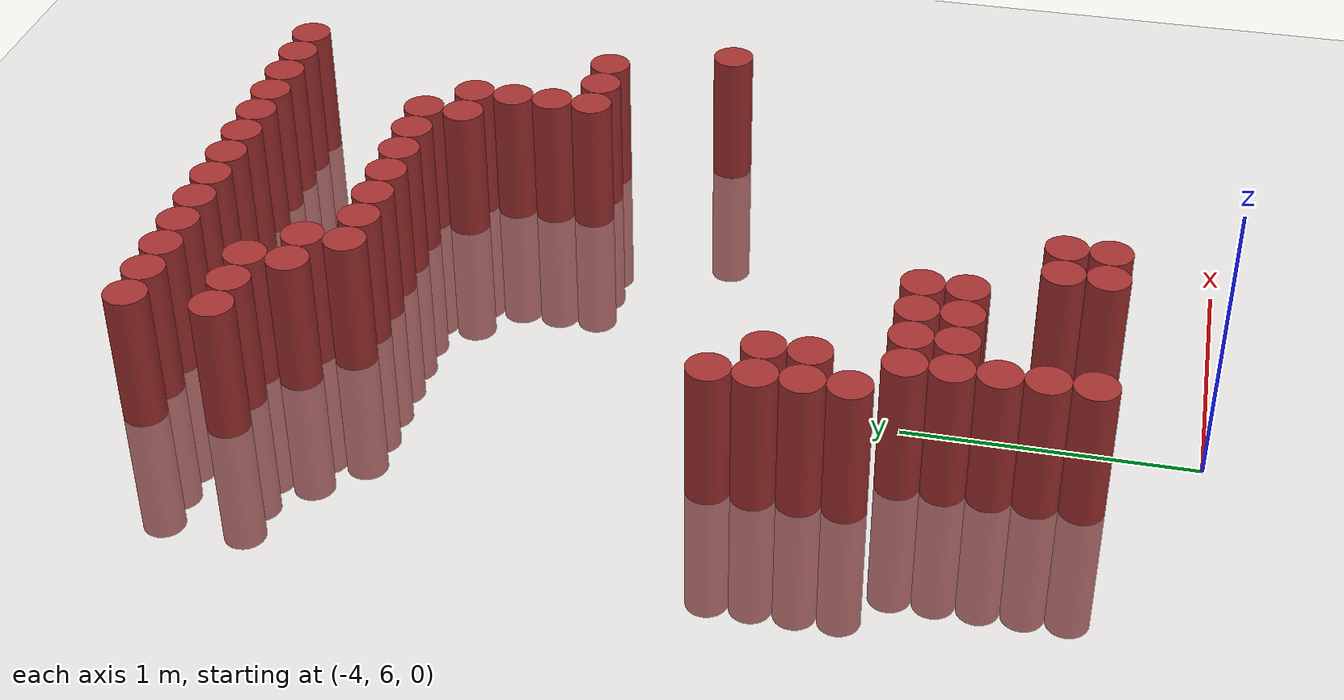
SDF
<sdf version="1.6">
 <world name="default">
  <model name="ground_plane">
   <static>1</static>
   <link name="link">
    <collision name="collision">
     <geometry><plane><normal>0 0 1</normal><size>100 100</size></plane></geometry>
     <surface><friction><ode><mu>100</mu><mu2>50</mu2></ode></friction></surface>
    </collision>
    <visual name="visual">
     <cast_shadows>0</cast_shadows>
     <geometry><plane><normal>0 0 1</normal><size>100 100</size></plane></geometry>
     <material>
      <script><uri>file://media/materials/scripts/gazebo.material</uri><name>Gazebo/Grey</name></script>
     </material>
    </visual>
   </link>
  </model>
  <model name="unit_cylinder_284">
   <static>1</static>
   <pose>-4.425000 7.125000 0.000000 0.000000 0.000000 0.000000</pose>
   <link name="link">
    <inertial>
     <mass>1</mass>
     <inertia><ixx>0.145833</ixx><ixy>0</ixy><ixz>0</ixz><iyy>0.145833</iyy><iyz>0</iyz><izz>0.125</izz></inertia>
    </inertial>
    <collision name="collision">
     <geometry><cylinder><radius>0.075000</radius><length>1</length></cylinder></geometry>
    </collision>
    <visual name="visual">
     <geometry><cylinder><radius>0.075000</radius><length>1</length></cylinder></geometry>
     <material>
      <ambient>0.648000 0.192000 0.192000 1</ambient>
      <diffuse>0.648000 0.192000 0.192000 1</diffuse>
     </material>
     <material>
      <script><name>Gazebo/Grey</name><uri>file://media/materials/scripts/gazebo.material</uri></script>
     </material>
    </visual>
   </link>
  </model>
  <model name="unit_cylinder_285">
   <static>1</static>
   <pose>-4.425000 7.275000 0.000000 0.000000 0.000000 0.000000</pose>
   <link name="link">
    <inertial>
     <mass>1</mass>
     <inertia><ixx>0.145833</ixx><ixy>0</ixy><ixz>0</ixz><iyy>0.145833</iyy><iyz>0</iyz><izz>0.125</izz></inertia>
    </inertial>
    <collision name="collision">
     <geometry><cylinder><radius>0.075000</radius><length>1</length></cylinder></geometry>
    </collision>
    <visual name="visual">
     <geometry><cylinder><radius>0.075000</radius><length>1</length></cylinder></geometry>
     <material>
      <ambient>0.648000 0.192000 0.192000 1</ambient>
      <diffuse>0.648000 0.192000 0.192000 1</diffuse>
     </material>
     <material>
      <script><name>Gazebo/Grey</name><uri>file://media/materials/scripts/gazebo.material</uri></script>
     </material>
    </visual>
   </link>
  </model>
  <model name="unit_cylinder_286">
   <static>1</static>
   <pose>-4.425000 7.425000 0.000000 0.000000 0.000000 0.000000</pose>
   <link name="link">
    <inertial>
     <mass>1</mass>
     <inertia><ixx>0.145833</ixx><ixy>0</ixy><ixz>0</ixz><iyy>0.145833</iyy><iyz>0</iyz><izz>0.125</izz></inertia>
    </inertial>
    <collision name="collision">
     <geometry><cylinder><radius>0.075000</radius><length>1</length></cylinder></geometry>
    </collision>
    <visual name="visual">
     <geometry><cylinder><radius>0.075000</radius><length>1</length></cylinder></geometry>
     <material>
      <ambient>0.648000 0.192000 0.192000 1</ambient>
      <diffuse>0.648000 0.192000 0.192000 1</diffuse>
     </material>
     <material>
      <script><name>Gazebo/Grey</name><uri>file://media/materials/scripts/gazebo.material</uri></script>
     </material>
    </visual>
   </link>
  </model>
  <model name="unit_cylinder_287">
   <static>1</static>
   <pose>-4.425000 7.575000 0.000000 0.000000 0.000000 0.000000</pose>
   <link name="link">
    <inertial>
     <mass>1</mass>
     <inertia><ixx>0.145833</ixx><ixy>0</ixy><ixz>0</ixz><iyy>0.145833</iyy><iyz>0</iyz><izz>0.125</izz></inertia>
    </inertial>
    <collision name="collision">
     <geometry><cylinder><radius>0.075000</radius><length>1</length></cylinder></geometry>
    </collision>
    <visual name="visual">
     <geometry><cylinder><radius>0.075000</radius><length>1</length></cylinder></geometry>
     <material>
      <ambient>0.648000 0.192000 0.192000 1</ambient>
      <diffuse>0.648000 0.192000 0.192000 1</diffuse>
     </material>
     <material>
      <script><name>Gazebo/Grey</name><uri>file://media/materials/scripts/gazebo.material</uri></script>
     </material>
    </visual>
   </link>
  </model>
  <model name="unit_cylinder_288">
   <static>1</static>
   <pose>-4.425000 9.225000 0.000000 0.000000 0.000000 0.000000</pose>
   <link name="link">
    <inertial>
     <mass>1</mass>
     <inertia><ixx>0.145833</ixx><ixy>0</ixy><ixz>0</ixz><iyy>0.145833</iyy><iyz>0</iyz><izz>0.125</izz></inertia>
    </inertial>
    <collision name="collision">
     <geometry><cylinder><radius>0.075000</radius><length>1</length></cylinder></geometry>
    </collision>
    <visual name="visual">
     <geometry><cylinder><radius>0.075000</radius><length>1</length></cylinder></geometry>
     <material>
      <ambient>0.648000 0.192000 0.192000 1</ambient>
      <diffuse>0.648000 0.192000 0.192000 1</diffuse>
     </material>
     <material>
      <script><name>Gazebo/Grey</name><uri>file://media/materials/scripts/gazebo.material</uri></script>
     </material>
    </visual>
   </link>
  </model>
  <model name="unit_cylinder_289">
   <static>1</static>
   <pose>-4.425000 9.525000 0.000000 0.000000 0.000000 0.000000</pose>
   <link name="link">
    <inertial>
     <mass>1</mass>
     <inertia><ixx>0.145833</ixx><ixy>0</ixy><ixz>0</ixz><iyy>0.145833</iyy><iyz>0</iyz><izz>0.125</izz></inertia>
    </inertial>
    <collision name="collision">
     <geometry><cylinder><radius>0.075000</radius><length>1</length></cylinder></geometry>
    </collision>
    <visual name="visual">
     <geometry><cylinder><radius>0.075000</radius><length>1</length></cylinder></geometry>
     <material>
      <ambient>0.648000 0.192000 0.192000 1</ambient>
      <diffuse>0.648000 0.192000 0.192000 1</diffuse>
     </material>
     <material>
      <script><name>Gazebo/Grey</name><uri>file://media/materials/scripts/gazebo.material</uri></script>
     </material>
    </visual>
   </link>
  </model>
  <model name="unit_cylinder_293">
   <static>1</static>
   <pose>-4.275000 6.375000 0.000000 0.000000 0.000000 0.000000</pose>
   <link name="link">
    <inertial>
     <mass>1</mass>
     <inertia><ixx>0.145833</ixx><ixy>0</ixy><ixz>0</ixz><iyy>0.145833</iyy><iyz>0</iyz><izz>0.125</izz></inertia>
    </inertial>
    <collision name="collision">
     <geometry><cylinder><radius>0.075000</radius><length>1</length></cylinder></geometry>
    </collision>
    <visual name="visual">
     <geometry><cylinder><radius>0.075000</radius><length>1</length></cylinder></geometry>
     <material>
      <ambient>0.648000 0.192000 0.192000 1</ambient>
      <diffuse>0.648000 0.192000 0.192000 1</diffuse>
     </material>
     <material>
      <script><name>Gazebo/Grey</name><uri>file://media/materials/scripts/gazebo.material</uri></script>
     </material>
    </visual>
   </link>
  </model>
  <model name="unit_cylinder_294">
   <static>1</static>
   <pose>-4.275000 6.525000 0.000000 0.000000 0.000000 0.000000</pose>
   <link name="link">
    <inertial>
     <mass>1</mass>
     <inertia><ixx>0.145833</ixx><ixy>0</ixy><ixz>0</ixz><iyy>0.145833</iyy><iyz>0</iyz><izz>0.125</izz></inertia>
    </inertial>
    <collision name="collision">
     <geometry><cylinder><radius>0.075000</radius><length>1</length></cylinder></geometry>
    </collision>
    <visual name="visual">
     <geometry><cylinder><radius>0.075000</radius><length>1</length></cylinder></geometry>
     <material>
      <ambient>0.648000 0.192000 0.192000 1</ambient>
      <diffuse>0.648000 0.192000 0.192000 1</diffuse>
     </material>
     <material>
      <script><name>Gazebo/Grey</name><uri>file://media/materials/scripts/gazebo.material</uri></script>
     </material>
    </visual>
   </link>
  </model>
  <model name="unit_cylinder_295">
   <static>1</static>
   <pose>-4.275000 6.675000 0.000000 0.000000 0.000000 0.000000</pose>
   <link name="link">
    <inertial>
     <mass>1</mass>
     <inertia><ixx>0.145833</ixx><ixy>0</ixy><ixz>0</ixz><iyy>0.145833</iyy><iyz>0</iyz><izz>0.125</izz></inertia>
    </inertial>
    <collision name="collision">
     <geometry><cylinder><radius>0.075000</radius><length>1</length></cylinder></geometry>
    </collision>
    <visual name="visual">
     <geometry><cylinder><radius>0.075000</radius><length>1</length></cylinder></geometry>
     <material>
      <ambient>0.648000 0.192000 0.192000 1</ambient>
      <diffuse>0.648000 0.192000 0.192000 1</diffuse>
     </material>
     <material>
      <script><name>Gazebo/Grey</name><uri>file://media/materials/scripts/gazebo.material</uri></script>
     </material>
    </visual>
   </link>
  </model>
  <model name="unit_cylinder_296">
   <static>1</static>
   <pose>-4.275000 6.825000 0.000000 0.000000 0.000000 0.000000</pose>
   <link name="link">
    <inertial>
     <mass>1</mass>
     <inertia><ixx>0.145833</ixx><ixy>0</ixy><ixz>0</ixz><iyy>0.145833</iyy><iyz>0</iyz><izz>0.125</izz></inertia>
    </inertial>
    <collision name="collision">
     <geometry><cylinder><radius>0.075000</radius><length>1</length></cylinder></geometry>
    </collision>
    <visual name="visual">
     <geometry><cylinder><radius>0.075000</radius><length>1</length></cylinder></geometry>
     <material>
      <ambient>0.648000 0.192000 0.192000 1</ambient>
      <diffuse>0.648000 0.192000 0.192000 1</diffuse>
     </material>
     <material>
      <script><name>Gazebo/Grey</name><uri>file://media/materials/scripts/gazebo.material</uri></script>
     </material>
    </visual>
   </link>
  </model>
  <model name="unit_cylinder_297">
   <static>1</static>
   <pose>-4.275000 6.975000 0.000000 0.000000 0.000000 0.000000</pose>
   <link name="link">
    <inertial>
     <mass>1</mass>
     <inertia><ixx>0.145833</ixx><ixy>0</ixy><ixz>0</ixz><iyy>0.145833</iyy><iyz>0</iyz><izz>0.125</izz></inertia>
    </inertial>
    <collision name="collision">
     <geometry><cylinder><radius>0.075000</radius><length>1</length></cylinder></geometry>
    </collision>
    <visual name="visual">
     <geometry><cylinder><radius>0.075000</radius><length>1</length></cylinder></geometry>
     <material>
      <ambient>0.648000 0.192000 0.192000 1</ambient>
      <diffuse>0.648000 0.192000 0.192000 1</diffuse>
     </material>
     <material>
      <script><name>Gazebo/Grey</name><uri>file://media/materials/scripts/gazebo.material</uri></script>
     </material>
    </visual>
   </link>
  </model>
  <model name="unit_cylinder_298">
   <static>1</static>
   <pose>-4.275000 7.275000 0.000000 0.000000 0.000000 0.000000</pose>
   <link name="link">
    <inertial>
     <mass>1</mass>
     <inertia><ixx>0.145833</ixx><ixy>0</ixy><ixz>0</ixz><iyy>0.145833</iyy><iyz>0</iyz><izz>0.125</izz></inertia>
    </inertial>
    <collision name="collision">
     <geometry><cylinder><radius>0.075000</radius><length>1</length></cylinder></geometry>
    </collision>
    <visual name="visual">
     <geometry><cylinder><radius>0.075000</radius><length>1</length></cylinder></geometry>
     <material>
      <ambient>0.648000 0.192000 0.192000 1</ambient>
      <diffuse>0.648000 0.192000 0.192000 1</diffuse>
     </material>
     <material>
      <script><name>Gazebo/Grey</name><uri>file://media/materials/scripts/gazebo.material</uri></script>
     </material>
    </visual>
   </link>
  </model>
  <model name="unit_cylinder_299">
   <static>1</static>
   <pose>-4.275000 7.425000 0.000000 0.000000 0.000000 0.000000</pose>
   <link name="link">
    <inertial>
     <mass>1</mass>
     <inertia><ixx>0.145833</ixx><ixy>0</ixy><ixz>0</ixz><iyy>0.145833</iyy><iyz>0</iyz><izz>0.125</izz></inertia>
    </inertial>
    <collision name="collision">
     <geometry><cylinder><radius>0.075000</radius><length>1</length></cylinder></geometry>
    </collision>
    <visual name="visual">
     <geometry><cylinder><radius>0.075000</radius><length>1</length></cylinder></geometry>
     <material>
      <ambient>0.648000 0.192000 0.192000 1</ambient>
      <diffuse>0.648000 0.192000 0.192000 1</diffuse>
     </material>
     <material>
      <script><name>Gazebo/Grey</name><uri>file://media/materials/scripts/gazebo.material</uri></script>
     </material>
    </visual>
   </link>
  </model>
  <model name="unit_cylinder_300">
   <static>1</static>
   <pose>-4.275000 9.225000 0.000000 0.000000 0.000000 0.000000</pose>
   <link name="link">
    <inertial>
     <mass>1</mass>
     <inertia><ixx>0.145833</ixx><ixy>0</ixy><ixz>0</ixz><iyy>0.145833</iyy><iyz>0</iyz><izz>0.125</izz></inertia>
    </inertial>
    <collision name="collision">
     <geometry><cylinder><radius>0.075000</radius><length>1</length></cylinder></geometry>
    </collision>
    <visual name="visual">
     <geometry><cylinder><radius>0.075000</radius><length>1</length></cylinder></geometry>
     <material>
      <ambient>0.648000 0.192000 0.192000 1</ambient>
      <diffuse>0.648000 0.192000 0.192000 1</diffuse>
     </material>
     <material>
      <script><name>Gazebo/Grey</name><uri>file://media/materials/scripts/gazebo.material</uri></script>
     </material>
    </visual>
   </link>
  </model>
  <model name="unit_cylinder_301">
   <static>1</static>
   <pose>-4.275000 9.525000 0.000000 0.000000 0.000000 0.000000</pose>
   <link name="link">
    <inertial>
     <mass>1</mass>
     <inertia><ixx>0.145833</ixx><ixy>0</ixy><ixz>0</ixz><iyy>0.145833</iyy><iyz>0</iyz><izz>0.125</izz></inertia>
    </inertial>
    <collision name="collision">
     <geometry><cylinder><radius>0.075000</radius><length>1</length></cylinder></geometry>
    </collision>
    <visual name="visual">
     <geometry><cylinder><radius>0.075000</radius><length>1</length></cylinder></geometry>
     <material>
      <ambient>0.648000 0.192000 0.192000 1</ambient>
      <diffuse>0.648000 0.192000 0.192000 1</diffuse>
     </material>
     <material>
      <script><name>Gazebo/Grey</name><uri>file://media/materials/scripts/gazebo.material</uri></script>
     </material>
    </visual>
   </link>
  </model>
  <model name="unit_cylinder_306">
   <static>1</static>
   <pose>-4.125000 6.825000 0.000000 0.000000 0.000000 0.000000</pose>
   <link name="link">
    <inertial>
     <mass>1</mass>
     <inertia><ixx>0.145833</ixx><ixy>0</ixy><ixz>0</ixz><iyy>0.145833</iyy><iyz>0</iyz><izz>0.125</izz></inertia>
    </inertial>
    <collision name="collision">
     <geometry><cylinder><radius>0.075000</radius><length>1</length></cylinder></geometry>
    </collision>
    <visual name="visual">
     <geometry><cylinder><radius>0.075000</radius><length>1</length></cylinder></geometry>
     <material>
      <ambient>0.648000 0.192000 0.192000 1</ambient>
      <diffuse>0.648000 0.192000 0.192000 1</diffuse>
     </material>
     <material>
      <script><name>Gazebo/Grey</name><uri>file://media/materials/scripts/gazebo.material</uri></script>
     </material>
    </visual>
   </link>
  </model>
  <model name="unit_cylinder_307">
   <static>1</static>
   <pose>-4.125000 6.975000 0.000000 0.000000 0.000000 0.000000</pose>
   <link name="link">
    <inertial>
     <mass>1</mass>
     <inertia><ixx>0.145833</ixx><ixy>0</ixy><ixz>0</ixz><iyy>0.145833</iyy><iyz>0</iyz><izz>0.125</izz></inertia>
    </inertial>
    <collision name="collision">
     <geometry><cylinder><radius>0.075000</radius><length>1</length></cylinder></geometry>
    </collision>
    <visual name="visual">
     <geometry><cylinder><radius>0.075000</radius><length>1</length></cylinder></geometry>
     <material>
      <ambient>0.648000 0.192000 0.192000 1</ambient>
      <diffuse>0.648000 0.192000 0.192000 1</diffuse>
     </material>
     <material>
      <script><name>Gazebo/Grey</name><uri>file://media/materials/scripts/gazebo.material</uri></script>
     </material>
    </visual>
   </link>
  </model>
  <model name="unit_cylinder_308">
   <static>1</static>
   <pose>-4.125000 9.075000 0.000000 0.000000 0.000000 0.000000</pose>
   <link name="link">
    <inertial>
     <mass>1</mass>
     <inertia><ixx>0.145833</ixx><ixy>0</ixy><ixz>0</ixz><iyy>0.145833</iyy><iyz>0</iyz><izz>0.125</izz></inertia>
    </inertial>
    <collision name="collision">
     <geometry><cylinder><radius>0.075000</radius><length>1</length></cylinder></geometry>
    </collision>
    <visual name="visual">
     <geometry><cylinder><radius>0.075000</radius><length>1</length></cylinder></geometry>
     <material>
      <ambient>0.648000 0.192000 0.192000 1</ambient>
      <diffuse>0.648000 0.192000 0.192000 1</diffuse>
     </material>
     <material>
      <script><name>Gazebo/Grey</name><uri>file://media/materials/scripts/gazebo.material</uri></script>
     </material>
    </visual>
   </link>
  </model>
  <model name="unit_cylinder_309">
   <static>1</static>
   <pose>-4.125000 9.225000 0.000000 0.000000 0.000000 0.000000</pose>
   <link name="link">
    <inertial>
     <mass>1</mass>
     <inertia><ixx>0.145833</ixx><ixy>0</ixy><ixz>0</ixz><iyy>0.145833</iyy><iyz>0</iyz><izz>0.125</izz></inertia>
    </inertial>
    <collision name="collision">
     <geometry><cylinder><radius>0.075000</radius><length>1</length></cylinder></geometry>
    </collision>
    <visual name="visual">
     <geometry><cylinder><radius>0.075000</radius><length>1</length></cylinder></geometry>
     <material>
      <ambient>0.648000 0.192000 0.192000 1</ambient>
      <diffuse>0.648000 0.192000 0.192000 1</diffuse>
     </material>
     <material>
      <script><name>Gazebo/Grey</name><uri>file://media/materials/scripts/gazebo.material</uri></script>
     </material>
    </visual>
   </link>
  </model>
  <model name="unit_cylinder_310">
   <static>1</static>
   <pose>-4.125000 9.525000 0.000000 0.000000 0.000000 0.000000</pose>
   <link name="link">
    <inertial>
     <mass>1</mass>
     <inertia><ixx>0.145833</ixx><ixy>0</ixy><ixz>0</ixz><iyy>0.145833</iyy><iyz>0</iyz><izz>0.125</izz></inertia>
    </inertial>
    <collision name="collision">
     <geometry><cylinder><radius>0.075000</radius><length>1</length></cylinder></geometry>
    </collision>
    <visual name="visual">
     <geometry><cylinder><radius>0.075000</radius><length>1</length></cylinder></geometry>
     <material>
      <ambient>0.648000 0.192000 0.192000 1</ambient>
      <diffuse>0.648000 0.192000 0.192000 1</diffuse>
     </material>
     <material>
      <script><name>Gazebo/Grey</name><uri>file://media/materials/scripts/gazebo.material</uri></script>
     </material>
    </visual>
   </link>
  </model>
  <model name="unit_cylinder_312">
   <static>1</static>
   <pose>-3.975000 6.825000 0.000000 0.000000 0.000000 0.000000</pose>
   <link name="link">
    <inertial>
     <mass>1</mass>
     <inertia><ixx>0.145833</ixx><ixy>0</ixy><ixz>0</ixz><iyy>0.145833</iyy><iyz>0</iyz><izz>0.125</izz></inertia>
    </inertial>
    <collision name="collision">
     <geometry><cylinder><radius>0.075000</radius><length>1</length></cylinder></geometry>
    </collision>
    <visual name="visual">
     <geometry><cylinder><radius>0.075000</radius><length>1</length></cylinder></geometry>
     <material>
      <ambient>0.648000 0.192000 0.192000 1</ambient>
      <diffuse>0.648000 0.192000 0.192000 1</diffuse>
     </material>
     <material>
      <script><name>Gazebo/Grey</name><uri>file://media/materials/scripts/gazebo.material</uri></script>
     </material>
    </visual>
   </link>
  </model>
  <model name="unit_cylinder_313">
   <static>1</static>
   <pose>-3.975000 6.975000 0.000000 0.000000 0.000000 0.000000</pose>
   <link name="link">
    <inertial>
     <mass>1</mass>
     <inertia><ixx>0.145833</ixx><ixy>0</ixy><ixz>0</ixz><iyy>0.145833</iyy><iyz>0</iyz><izz>0.125</izz></inertia>
    </inertial>
    <collision name="collision">
     <geometry><cylinder><radius>0.075000</radius><length>1</length></cylinder></geometry>
    </collision>
    <visual name="visual">
     <geometry><cylinder><radius>0.075000</radius><length>1</length></cylinder></geometry>
     <material>
      <ambient>0.648000 0.192000 0.192000 1</ambient>
      <diffuse>0.648000 0.192000 0.192000 1</diffuse>
     </material>
     <material>
      <script><name>Gazebo/Grey</name><uri>file://media/materials/scripts/gazebo.material</uri></script>
     </material>
    </visual>
   </link>
  </model>
  <model name="unit_cylinder_314">
   <static>1</static>
   <pose>-3.975000 8.925000 0.000000 0.000000 0.000000 0.000000</pose>
   <link name="link">
    <inertial>
     <mass>1</mass>
     <inertia><ixx>0.145833</ixx><ixy>0</ixy><ixz>0</ixz><iyy>0.145833</iyy><iyz>0</iyz><izz>0.125</izz></inertia>
    </inertial>
    <collision name="collision">
     <geometry><cylinder><radius>0.075000</radius><length>1</length></cylinder></geometry>
    </collision>
    <visual name="visual">
     <geometry><cylinder><radius>0.075000</radius><length>1</length></cylinder></geometry>
     <material>
      <ambient>0.648000 0.192000 0.192000 1</ambient>
      <diffuse>0.648000 0.192000 0.192000 1</diffuse>
     </material>
     <material>
      <script><name>Gazebo/Grey</name><uri>file://media/materials/scripts/gazebo.material</uri></script>
     </material>
    </visual>
   </link>
  </model>
  <model name="unit_cylinder_315">
   <static>1</static>
   <pose>-3.975000 9.075000 0.000000 0.000000 0.000000 0.000000</pose>
   <link name="link">
    <inertial>
     <mass>1</mass>
     <inertia><ixx>0.145833</ixx><ixy>0</ixy><ixz>0</ixz><iyy>0.145833</iyy><iyz>0</iyz><izz>0.125</izz></inertia>
    </inertial>
    <collision name="collision">
     <geometry><cylinder><radius>0.075000</radius><length>1</length></cylinder></geometry>
    </collision>
    <visual name="visual">
     <geometry><cylinder><radius>0.075000</radius><length>1</length></cylinder></geometry>
     <material>
      <ambient>0.648000 0.192000 0.192000 1</ambient>
      <diffuse>0.648000 0.192000 0.192000 1</diffuse>
     </material>
     <material>
      <script><name>Gazebo/Grey</name><uri>file://media/materials/scripts/gazebo.material</uri></script>
     </material>
    </visual>
   </link>
  </model>
  <model name="unit_cylinder_316">
   <static>1</static>
   <pose>-3.975000 9.525000 0.000000 0.000000 0.000000 0.000000</pose>
   <link name="link">
    <inertial>
     <mass>1</mass>
     <inertia><ixx>0.145833</ixx><ixy>0</ixy><ixz>0</ixz><iyy>0.145833</iyy><iyz>0</iyz><izz>0.125</izz></inertia>
    </inertial>
    <collision name="collision">
     <geometry><cylinder><radius>0.075000</radius><length>1</length></cylinder></geometry>
    </collision>
    <visual name="visual">
     <geometry><cylinder><radius>0.075000</radius><length>1</length></cylinder></geometry>
     <material>
      <ambient>0.648000 0.192000 0.192000 1</ambient>
      <diffuse>0.648000 0.192000 0.192000 1</diffuse>
     </material>
     <material>
      <script><name>Gazebo/Grey</name><uri>file://media/materials/scripts/gazebo.material</uri></script>
     </material>
    </visual>
   </link>
  </model>
  <model name="unit_cylinder_319">
   <static>1</static>
   <pose>-3.825000 6.825000 0.000000 0.000000 0.000000 0.000000</pose>
   <link name="link">
    <inertial>
     <mass>1</mass>
     <inertia><ixx>0.145833</ixx><ixy>0</ixy><ixz>0</ixz><iyy>0.145833</iyy><iyz>0</iyz><izz>0.125</izz></inertia>
    </inertial>
    <collision name="collision">
     <geometry><cylinder><radius>0.075000</radius><length>1</length></cylinder></geometry>
    </collision>
    <visual name="visual">
     <geometry><cylinder><radius>0.075000</radius><length>1</length></cylinder></geometry>
     <material>
      <ambient>0.648000 0.192000 0.192000 1</ambient>
      <diffuse>0.648000 0.192000 0.192000 1</diffuse>
     </material>
     <material>
      <script><name>Gazebo/Grey</name><uri>file://media/materials/scripts/gazebo.material</uri></script>
     </material>
    </visual>
   </link>
  </model>
  <model name="unit_cylinder_320">
   <static>1</static>
   <pose>-3.825000 6.975000 0.000000 0.000000 0.000000 0.000000</pose>
   <link name="link">
    <inertial>
     <mass>1</mass>
     <inertia><ixx>0.145833</ixx><ixy>0</ixy><ixz>0</ixz><iyy>0.145833</iyy><iyz>0</iyz><izz>0.125</izz></inertia>
    </inertial>
    <collision name="collision">
     <geometry><cylinder><radius>0.075000</radius><length>1</length></cylinder></geometry>
    </collision>
    <visual name="visual">
     <geometry><cylinder><radius>0.075000</radius><length>1</length></cylinder></geometry>
     <material>
      <ambient>0.648000 0.192000 0.192000 1</ambient>
      <diffuse>0.648000 0.192000 0.192000 1</diffuse>
     </material>
     <material>
      <script><name>Gazebo/Grey</name><uri>file://media/materials/scripts/gazebo.material</uri></script>
     </material>
    </visual>
   </link>
  </model>
  <model name="unit_cylinder_321">
   <static>1</static>
   <pose>-3.825000 8.925000 0.000000 0.000000 0.000000 0.000000</pose>
   <link name="link">
    <inertial>
     <mass>1</mass>
     <inertia><ixx>0.145833</ixx><ixy>0</ixy><ixz>0</ixz><iyy>0.145833</iyy><iyz>0</iyz><izz>0.125</izz></inertia>
    </inertial>
    <collision name="collision">
     <geometry><cylinder><radius>0.075000</radius><length>1</length></cylinder></geometry>
    </collision>
    <visual name="visual">
     <geometry><cylinder><radius>0.075000</radius><length>1</length></cylinder></geometry>
     <material>
      <ambient>0.648000 0.192000 0.192000 1</ambient>
      <diffuse>0.648000 0.192000 0.192000 1</diffuse>
     </material>
     <material>
      <script><name>Gazebo/Grey</name><uri>file://media/materials/scripts/gazebo.material</uri></script>
     </material>
    </visual>
   </link>
  </model>
  <model name="unit_cylinder_322">
   <static>1</static>
   <pose>-3.825000 9.525000 0.000000 0.000000 0.000000 0.000000</pose>
   <link name="link">
    <inertial>
     <mass>1</mass>
     <inertia><ixx>0.145833</ixx><ixy>0</ixy><ixz>0</ixz><iyy>0.145833</iyy><iyz>0</iyz><izz>0.125</izz></inertia>
    </inertial>
    <collision name="collision">
     <geometry><cylinder><radius>0.075000</radius><length>1</length></cylinder></geometry>
    </collision>
    <visual name="visual">
     <geometry><cylinder><radius>0.075000</radius><length>1</length></cylinder></geometry>
     <material>
      <ambient>0.648000 0.192000 0.192000 1</ambient>
      <diffuse>0.648000 0.192000 0.192000 1</diffuse>
     </material>
     <material>
      <script><name>Gazebo/Grey</name><uri>file://media/materials/scripts/gazebo.material</uri></script>
     </material>
    </visual>
   </link>
  </model>
  <model name="unit_cylinder_326">
   <static>1</static>
   <pose>-3.675000 6.375000 0.000000 0.000000 0.000000 0.000000</pose>
   <link name="link">
    <inertial>
     <mass>1</mass>
     <inertia><ixx>0.145833</ixx><ixy>0</ixy><ixz>0</ixz><iyy>0.145833</iyy><iyz>0</iyz><izz>0.125</izz></inertia>
    </inertial>
    <collision name="collision">
     <geometry><cylinder><radius>0.075000</radius><length>1</length></cylinder></geometry>
    </collision>
    <visual name="visual">
     <geometry><cylinder><radius>0.075000</radius><length>1</length></cylinder></geometry>
     <material>
      <ambient>0.648000 0.192000 0.192000 1</ambient>
      <diffuse>0.648000 0.192000 0.192000 1</diffuse>
     </material>
     <material>
      <script><name>Gazebo/Grey</name><uri>file://media/materials/scripts/gazebo.material</uri></script>
     </material>
    </visual>
   </link>
  </model>
  <model name="unit_cylinder_327">
   <static>1</static>
   <pose>-3.675000 6.525000 0.000000 0.000000 0.000000 0.000000</pose>
   <link name="link">
    <inertial>
     <mass>1</mass>
     <inertia><ixx>0.145833</ixx><ixy>0</ixy><ixz>0</ixz><iyy>0.145833</iyy><iyz>0</iyz><izz>0.125</izz></inertia>
    </inertial>
    <collision name="collision">
     <geometry><cylinder><radius>0.075000</radius><length>1</length></cylinder></geometry>
    </collision>
    <visual name="visual">
     <geometry><cylinder><radius>0.075000</radius><length>1</length></cylinder></geometry>
     <material>
      <ambient>0.648000 0.192000 0.192000 1</ambient>
      <diffuse>0.648000 0.192000 0.192000 1</diffuse>
     </material>
     <material>
      <script><name>Gazebo/Grey</name><uri>file://media/materials/scripts/gazebo.material</uri></script>
     </material>
    </visual>
   </link>
  </model>
  <model name="unit_cylinder_328">
   <static>1</static>
   <pose>-3.675000 8.925000 0.000000 0.000000 0.000000 0.000000</pose>
   <link name="link">
    <inertial>
     <mass>1</mass>
     <inertia><ixx>0.145833</ixx><ixy>0</ixy><ixz>0</ixz><iyy>0.145833</iyy><iyz>0</iyz><izz>0.125</izz></inertia>
    </inertial>
    <collision name="collision">
     <geometry><cylinder><radius>0.075000</radius><length>1</length></cylinder></geometry>
    </collision>
    <visual name="visual">
     <geometry><cylinder><radius>0.075000</radius><length>1</length></cylinder></geometry>
     <material>
      <ambient>0.648000 0.192000 0.192000 1</ambient>
      <diffuse>0.648000 0.192000 0.192000 1</diffuse>
     </material>
     <material>
      <script><name>Gazebo/Grey</name><uri>file://media/materials/scripts/gazebo.material</uri></script>
     </material>
    </visual>
   </link>
  </model>
  <model name="unit_cylinder_329">
   <static>1</static>
   <pose>-3.675000 9.525000 0.000000 0.000000 0.000000 0.000000</pose>
   <link name="link">
    <inertial>
     <mass>1</mass>
     <inertia><ixx>0.145833</ixx><ixy>0</ixy><ixz>0</ixz><iyy>0.145833</iyy><iyz>0</iyz><izz>0.125</izz></inertia>
    </inertial>
    <collision name="collision">
     <geometry><cylinder><radius>0.075000</radius><length>1</length></cylinder></geometry>
    </collision>
    <visual name="visual">
     <geometry><cylinder><radius>0.075000</radius><length>1</length></cylinder></geometry>
     <material>
      <ambient>0.648000 0.192000 0.192000 1</ambient>
      <diffuse>0.648000 0.192000 0.192000 1</diffuse>
     </material>
     <material>
      <script><name>Gazebo/Grey</name><uri>file://media/materials/scripts/gazebo.material</uri></script>
     </material>
    </visual>
   </link>
  </model>
  <model name="unit_cylinder_333">
   <static>1</static>
   <pose>-3.525000 6.375000 0.000000 0.000000 0.000000 0.000000</pose>
   <link name="link">
    <inertial>
     <mass>1</mass>
     <inertia><ixx>0.145833</ixx><ixy>0</ixy><ixz>0</ixz><iyy>0.145833</iyy><iyz>0</iyz><izz>0.125</izz></inertia>
    </inertial>
    <collision name="collision">
     <geometry><cylinder><radius>0.075000</radius><length>1</length></cylinder></geometry>
    </collision>
    <visual name="visual">
     <geometry><cylinder><radius>0.075000</radius><length>1</length></cylinder></geometry>
     <material>
      <ambient>0.648000 0.192000 0.192000 1</ambient>
      <diffuse>0.648000 0.192000 0.192000 1</diffuse>
     </material>
     <material>
      <script><name>Gazebo/Grey</name><uri>file://media/materials/scripts/gazebo.material</uri></script>
     </material>
    </visual>
   </link>
  </model>
  <model name="unit_cylinder_334">
   <static>1</static>
   <pose>-3.525000 6.525000 0.000000 0.000000 0.000000 0.000000</pose>
   <link name="link">
    <inertial>
     <mass>1</mass>
     <inertia><ixx>0.145833</ixx><ixy>0</ixy><ixz>0</ixz><iyy>0.145833</iyy><iyz>0</iyz><izz>0.125</izz></inertia>
    </inertial>
    <collision name="collision">
     <geometry><cylinder><radius>0.075000</radius><length>1</length></cylinder></geometry>
    </collision>
    <visual name="visual">
     <geometry><cylinder><radius>0.075000</radius><length>1</length></cylinder></geometry>
     <material>
      <ambient>0.648000 0.192000 0.192000 1</ambient>
      <diffuse>0.648000 0.192000 0.192000 1</diffuse>
     </material>
     <material>
      <script><name>Gazebo/Grey</name><uri>file://media/materials/scripts/gazebo.material</uri></script>
     </material>
    </visual>
   </link>
  </model>
  <model name="unit_cylinder_335">
   <static>1</static>
   <pose>-3.525000 8.925000 0.000000 0.000000 0.000000 0.000000</pose>
   <link name="link">
    <inertial>
     <mass>1</mass>
     <inertia><ixx>0.145833</ixx><ixy>0</ixy><ixz>0</ixz><iyy>0.145833</iyy><iyz>0</iyz><izz>0.125</izz></inertia>
    </inertial>
    <collision name="collision">
     <geometry><cylinder><radius>0.075000</radius><length>1</length></cylinder></geometry>
    </collision>
    <visual name="visual">
     <geometry><cylinder><radius>0.075000</radius><length>1</length></cylinder></geometry>
     <material>
      <ambient>0.648000 0.192000 0.192000 1</ambient>
      <diffuse>0.648000 0.192000 0.192000 1</diffuse>
     </material>
     <material>
      <script><name>Gazebo/Grey</name><uri>file://media/materials/scripts/gazebo.material</uri></script>
     </material>
    </visual>
   </link>
  </model>
  <model name="unit_cylinder_336">
   <static>1</static>
   <pose>-3.525000 9.525000 0.000000 0.000000 0.000000 0.000000</pose>
   <link name="link">
    <inertial>
     <mass>1</mass>
     <inertia><ixx>0.145833</ixx><ixy>0</ixy><ixz>0</ixz><iyy>0.145833</iyy><iyz>0</iyz><izz>0.125</izz></inertia>
    </inertial>
    <collision name="collision">
     <geometry><cylinder><radius>0.075000</radius><length>1</length></cylinder></geometry>
    </collision>
    <visual name="visual">
     <geometry><cylinder><radius>0.075000</radius><length>1</length></cylinder></geometry>
     <material>
      <ambient>0.648000 0.192000 0.192000 1</ambient>
      <diffuse>0.648000 0.192000 0.192000 1</diffuse>
     </material>
     <material>
      <script><name>Gazebo/Grey</name><uri>file://media/materials/scripts/gazebo.material</uri></script>
     </material>
    </visual>
   </link>
  </model>
  <model name="unit_cylinder_338">
   <static>1</static>
   <pose>-3.375000 8.925000 0.000000 0.000000 0.000000 0.000000</pose>
   <link name="link">
    <inertial>
     <mass>1</mass>
     <inertia><ixx>0.145833</ixx><ixy>0</ixy><ixz>0</ixz><iyy>0.145833</iyy><iyz>0</iyz><izz>0.125</izz></inertia>
    </inertial>
    <collision name="collision">
     <geometry><cylinder><radius>0.075000</radius><length>1</length></cylinder></geometry>
    </collision>
    <visual name="visual">
     <geometry><cylinder><radius>0.075000</radius><length>1</length></cylinder></geometry>
     <material>
      <ambient>0.648000 0.192000 0.192000 1</ambient>
      <diffuse>0.648000 0.192000 0.192000 1</diffuse>
     </material>
     <material>
      <script><name>Gazebo/Grey</name><uri>file://media/materials/scripts/gazebo.material</uri></script>
     </material>
    </visual>
   </link>
  </model>
  <model name="unit_cylinder_339">
   <static>1</static>
   <pose>-3.375000 9.525000 0.000000 0.000000 0.000000 0.000000</pose>
   <link name="link">
    <inertial>
     <mass>1</mass>
     <inertia><ixx>0.145833</ixx><ixy>0</ixy><ixz>0</ixz><iyy>0.145833</iyy><iyz>0</iyz><izz>0.125</izz></inertia>
    </inertial>
    <collision name="collision">
     <geometry><cylinder><radius>0.075000</radius><length>1</length></cylinder></geometry>
    </collision>
    <visual name="visual">
     <geometry><cylinder><radius>0.075000</radius><length>1</length></cylinder></geometry>
     <material>
      <ambient>0.648000 0.192000 0.192000 1</ambient>
      <diffuse>0.648000 0.192000 0.192000 1</diffuse>
     </material>
     <material>
      <script><name>Gazebo/Grey</name><uri>file://media/materials/scripts/gazebo.material</uri></script>
     </material>
    </visual>
   </link>
  </model>
  <model name="unit_cylinder_340">
   <static>1</static>
   <pose>-3.225000 8.925000 0.000000 0.000000 0.000000 0.000000</pose>
   <link name="link">
    <inertial>
     <mass>1</mass>
     <inertia><ixx>0.145833</ixx><ixy>0</ixy><ixz>0</ixz><iyy>0.145833</iyy><iyz>0</iyz><izz>0.125</izz></inertia>
    </inertial>
    <collision name="collision">
     <geometry><cylinder><radius>0.075000</radius><length>1</length></cylinder></geometry>
    </collision>
    <visual name="visual">
     <geometry><cylinder><radius>0.075000</radius><length>1</length></cylinder></geometry>
     <material>
      <ambient>0.648000 0.192000 0.192000 1</ambient>
      <diffuse>0.648000 0.192000 0.192000 1</diffuse>
     </material>
     <material>
      <script><name>Gazebo/Grey</name><uri>file://media/materials/scripts/gazebo.material</uri></script>
     </material>
    </visual>
   </link>
  </model>
  <model name="unit_cylinder_341">
   <static>1</static>
   <pose>-3.225000 9.525000 0.000000 0.000000 0.000000 0.000000</pose>
   <link name="link">
    <inertial>
     <mass>1</mass>
     <inertia><ixx>0.145833</ixx><ixy>0</ixy><ixz>0</ixz><iyy>0.145833</iyy><iyz>0</iyz><izz>0.125</izz></inertia>
    </inertial>
    <collision name="collision">
     <geometry><cylinder><radius>0.075000</radius><length>1</length></cylinder></geometry>
    </collision>
    <visual name="visual">
     <geometry><cylinder><radius>0.075000</radius><length>1</length></cylinder></geometry>
     <material>
      <ambient>0.648000 0.192000 0.192000 1</ambient>
      <diffuse>0.648000 0.192000 0.192000 1</diffuse>
     </material>
     <material>
      <script><name>Gazebo/Grey</name><uri>file://media/materials/scripts/gazebo.material</uri></script>
     </material>
    </visual>
   </link>
  </model>
  <model name="unit_cylinder_342">
   <static>1</static>
   <pose>-3.075000 8.775000 0.000000 0.000000 0.000000 0.000000</pose>
   <link name="link">
    <inertial>
     <mass>1</mass>
     <inertia><ixx>0.145833</ixx><ixy>0</ixy><ixz>0</ixz><iyy>0.145833</iyy><iyz>0</iyz><izz>0.125</izz></inertia>
    </inertial>
    <collision name="collision">
     <geometry><cylinder><radius>0.075000</radius><length>1</length></cylinder></geometry>
    </collision>
    <visual name="visual">
     <geometry><cylinder><radius>0.075000</radius><length>1</length></cylinder></geometry>
     <material>
      <ambient>0.648000 0.192000 0.192000 1</ambient>
      <diffuse>0.648000 0.192000 0.192000 1</diffuse>
     </material>
     <material>
      <script><name>Gazebo/Grey</name><uri>file://media/materials/scripts/gazebo.material</uri></script>
     </material>
    </visual>
   </link>
  </model>
  <model name="unit_cylinder_343">
   <static>1</static>
   <pose>-3.075000 8.925000 0.000000 0.000000 0.000000 0.000000</pose>
   <link name="link">
    <inertial>
     <mass>1</mass>
     <inertia><ixx>0.145833</ixx><ixy>0</ixy><ixz>0</ixz><iyy>0.145833</iyy><iyz>0</iyz><izz>0.125</izz></inertia>
    </inertial>
    <collision name="collision">
     <geometry><cylinder><radius>0.075000</radius><length>1</length></cylinder></geometry>
    </collision>
    <visual name="visual">
     <geometry><cylinder><radius>0.075000</radius><length>1</length></cylinder></geometry>
     <material>
      <ambient>0.648000 0.192000 0.192000 1</ambient>
      <diffuse>0.648000 0.192000 0.192000 1</diffuse>
     </material>
     <material>
      <script><name>Gazebo/Grey</name><uri>file://media/materials/scripts/gazebo.material</uri></script>
     </material>
    </visual>
   </link>
  </model>
  <model name="unit_cylinder_344">
   <static>1</static>
   <pose>-3.075000 9.525000 0.000000 0.000000 0.000000 0.000000</pose>
   <link name="link">
    <inertial>
     <mass>1</mass>
     <inertia><ixx>0.145833</ixx><ixy>0</ixy><ixz>0</ixz><iyy>0.145833</iyy><iyz>0</iyz><izz>0.125</izz></inertia>
    </inertial>
    <collision name="collision">
     <geometry><cylinder><radius>0.075000</radius><length>1</length></cylinder></geometry>
    </collision>
    <visual name="visual">
     <geometry><cylinder><radius>0.075000</radius><length>1</length></cylinder></geometry>
     <material>
      <ambient>0.648000 0.192000 0.192000 1</ambient>
      <diffuse>0.648000 0.192000 0.192000 1</diffuse>
     </material>
     <material>
      <script><name>Gazebo/Grey</name><uri>file://media/materials/scripts/gazebo.material</uri></script>
     </material>
    </visual>
   </link>
  </model>
  <model name="unit_cylinder_345">
   <static>1</static>
   <pose>-2.925000 8.325000 0.000000 0.000000 0.000000 0.000000</pose>
   <link name="link">
    <inertial>
     <mass>1</mass>
     <inertia><ixx>0.145833</ixx><ixy>0</ixy><ixz>0</ixz><iyy>0.145833</iyy><iyz>0</iyz><izz>0.125</izz></inertia>
    </inertial>
    <collision name="collision">
     <geometry><cylinder><radius>0.075000</radius><length>1</length></cylinder></geometry>
    </collision>
    <visual name="visual">
     <geometry><cylinder><radius>0.075000</radius><length>1</length></cylinder></geometry>
     <material>
      <ambient>0.648000 0.192000 0.192000 1</ambient>
      <diffuse>0.648000 0.192000 0.192000 1</diffuse>
     </material>
     <material>
      <script><name>Gazebo/Grey</name><uri>file://media/materials/scripts/gazebo.material</uri></script>
     </material>
    </visual>
   </link>
  </model>
  <model name="unit_cylinder_346">
   <static>1</static>
   <pose>-2.925000 8.475000 0.000000 0.000000 0.000000 0.000000</pose>
   <link name="link">
    <inertial>
     <mass>1</mass>
     <inertia><ixx>0.145833</ixx><ixy>0</ixy><ixz>0</ixz><iyy>0.145833</iyy><iyz>0</iyz><izz>0.125</izz></inertia>
    </inertial>
    <collision name="collision">
     <geometry><cylinder><radius>0.075000</radius><length>1</length></cylinder></geometry>
    </collision>
    <visual name="visual">
     <geometry><cylinder><radius>0.075000</radius><length>1</length></cylinder></geometry>
     <material>
      <ambient>0.648000 0.192000 0.192000 1</ambient>
      <diffuse>0.648000 0.192000 0.192000 1</diffuse>
     </material>
     <material>
      <script><name>Gazebo/Grey</name><uri>file://media/materials/scripts/gazebo.material</uri></script>
     </material>
    </visual>
   </link>
  </model>
  <model name="unit_cylinder_347">
   <static>1</static>
   <pose>-2.925000 8.625000 0.000000 0.000000 0.000000 0.000000</pose>
   <link name="link">
    <inertial>
     <mass>1</mass>
     <inertia><ixx>0.145833</ixx><ixy>0</ixy><ixz>0</ixz><iyy>0.145833</iyy><iyz>0</iyz><izz>0.125</izz></inertia>
    </inertial>
    <collision name="collision">
     <geometry><cylinder><radius>0.075000</radius><length>1</length></cylinder></geometry>
    </collision>
    <visual name="visual">
     <geometry><cylinder><radius>0.075000</radius><length>1</length></cylinder></geometry>
     <material>
      <ambient>0.648000 0.192000 0.192000 1</ambient>
      <diffuse>0.648000 0.192000 0.192000 1</diffuse>
     </material>
     <material>
      <script><name>Gazebo/Grey</name><uri>file://media/materials/scripts/gazebo.material</uri></script>
     </material>
    </visual>
   </link>
  </model>
  <model name="unit_cylinder_348">
   <static>1</static>
   <pose>-2.925000 8.775000 0.000000 0.000000 0.000000 0.000000</pose>
   <link name="link">
    <inertial>
     <mass>1</mass>
     <inertia><ixx>0.145833</ixx><ixy>0</ixy><ixz>0</ixz><iyy>0.145833</iyy><iyz>0</iyz><izz>0.125</izz></inertia>
    </inertial>
    <collision name="collision">
     <geometry><cylinder><radius>0.075000</radius><length>1</length></cylinder></geometry>
    </collision>
    <visual name="visual">
     <geometry><cylinder><radius>0.075000</radius><length>1</length></cylinder></geometry>
     <material>
      <ambient>0.648000 0.192000 0.192000 1</ambient>
      <diffuse>0.648000 0.192000 0.192000 1</diffuse>
     </material>
     <material>
      <script><name>Gazebo/Grey</name><uri>file://media/materials/scripts/gazebo.material</uri></script>
     </material>
    </visual>
   </link>
  </model>
  <model name="unit_cylinder_349">
   <static>1</static>
   <pose>-2.925000 9.525000 0.000000 0.000000 0.000000 0.000000</pose>
   <link name="link">
    <inertial>
     <mass>1</mass>
     <inertia><ixx>0.145833</ixx><ixy>0</ixy><ixz>0</ixz><iyy>0.145833</iyy><iyz>0</iyz><izz>0.125</izz></inertia>
    </inertial>
    <collision name="collision">
     <geometry><cylinder><radius>0.075000</radius><length>1</length></cylinder></geometry>
    </collision>
    <visual name="visual">
     <geometry><cylinder><radius>0.075000</radius><length>1</length></cylinder></geometry>
     <material>
      <ambient>0.648000 0.192000 0.192000 1</ambient>
      <diffuse>0.648000 0.192000 0.192000 1</diffuse>
     </material>
     <material>
      <script><name>Gazebo/Grey</name><uri>file://media/materials/scripts/gazebo.material</uri></script>
     </material>
    </visual>
   </link>
  </model>
  <model name="unit_cylinder_350">
   <static>1</static>
   <pose>-2.775000 8.325000 0.000000 0.000000 0.000000 0.000000</pose>
   <link name="link">
    <inertial>
     <mass>1</mass>
     <inertia><ixx>0.145833</ixx><ixy>0</ixy><ixz>0</ixz><iyy>0.145833</iyy><iyz>0</iyz><izz>0.125</izz></inertia>
    </inertial>
    <collision name="collision">
     <geometry><cylinder><radius>0.075000</radius><length>1</length></cylinder></geometry>
    </collision>
    <visual name="visual">
     <geometry><cylinder><radius>0.075000</radius><length>1</length></cylinder></geometry>
     <material>
      <ambient>0.648000 0.192000 0.192000 1</ambient>
      <diffuse>0.648000 0.192000 0.192000 1</diffuse>
     </material>
     <material>
      <script><name>Gazebo/Grey</name><uri>file://media/materials/scripts/gazebo.material</uri></script>
     </material>
    </visual>
   </link>
  </model>
  <model name="unit_cylinder_351">
   <static>1</static>
   <pose>-2.775000 9.525000 0.000000 0.000000 0.000000 0.000000</pose>
   <link name="link">
    <inertial>
     <mass>1</mass>
     <inertia><ixx>0.145833</ixx><ixy>0</ixy><ixz>0</ixz><iyy>0.145833</iyy><iyz>0</iyz><izz>0.125</izz></inertia>
    </inertial>
    <collision name="collision">
     <geometry><cylinder><radius>0.075000</radius><length>1</length></cylinder></geometry>
    </collision>
    <visual name="visual">
     <geometry><cylinder><radius>0.075000</radius><length>1</length></cylinder></geometry>
     <material>
      <ambient>0.648000 0.192000 0.192000 1</ambient>
      <diffuse>0.648000 0.192000 0.192000 1</diffuse>
     </material>
     <material>
      <script><name>Gazebo/Grey</name><uri>file://media/materials/scripts/gazebo.material</uri></script>
     </material>
    </visual>
   </link>
  </model>
  <model name="unit_cylinder_352">
   <static>1</static>
   <pose>-2.625000 8.325000 0.000000 0.000000 0.000000 0.000000</pose>
   <link name="link">
    <inertial>
     <mass>1</mass>
     <inertia><ixx>0.145833</ixx><ixy>0</ixy><ixz>0</ixz><iyy>0.145833</iyy><iyz>0</iyz><izz>0.125</izz></inertia>
    </inertial>
    <collision name="collision">
     <geometry><cylinder><radius>0.075000</radius><length>1</length></cylinder></geometry>
    </collision>
    <visual name="visual">
     <geometry><cylinder><radius>0.075000</radius><length>1</length></cylinder></geometry>
     <material>
      <ambient>0.648000 0.192000 0.192000 1</ambient>
      <diffuse>0.648000 0.192000 0.192000 1</diffuse>
     </material>
     <material>
      <script><name>Gazebo/Grey</name><uri>file://media/materials/scripts/gazebo.material</uri></script>
     </material>
    </visual>
   </link>
  </model>
  <model name="unit_cylinder_353">
   <static>1</static>
   <pose>-2.625000 9.525000 0.000000 0.000000 0.000000 0.000000</pose>
   <link name="link">
    <inertial>
     <mass>1</mass>
     <inertia><ixx>0.145833</ixx><ixy>0</ixy><ixz>0</ixz><iyy>0.145833</iyy><iyz>0</iyz><izz>0.125</izz></inertia>
    </inertial>
    <collision name="collision">
     <geometry><cylinder><radius>0.075000</radius><length>1</length></cylinder></geometry>
    </collision>
    <visual name="visual">
     <geometry><cylinder><radius>0.075000</radius><length>1</length></cylinder></geometry>
     <material>
      <ambient>0.648000 0.192000 0.192000 1</ambient>
      <diffuse>0.648000 0.192000 0.192000 1</diffuse>
     </material>
     <material>
      <script><name>Gazebo/Grey</name><uri>file://media/materials/scripts/gazebo.material</uri></script>
     </material>
    </visual>
   </link>
  </model>
  <model name="unit_cylinder_354">
   <static>1</static>
   <pose>-2.475000 7.875000 0.000000 0.000000 0.000000 0.000000</pose>
   <link name="link">
    <inertial>
     <mass>1</mass>
     <inertia><ixx>0.145833</ixx><ixy>0</ixy><ixz>0</ixz><iyy>0.145833</iyy><iyz>0</iyz><izz>0.125</izz></inertia>
    </inertial>
    <collision name="collision">
     <geometry><cylinder><radius>0.075000</radius><length>1</length></cylinder></geometry>
    </collision>
    <visual name="visual">
     <geometry><cylinder><radius>0.075000</radius><length>1</length></cylinder></geometry>
     <material>
      <ambient>0.648000 0.192000 0.192000 1</ambient>
      <diffuse>0.648000 0.192000 0.192000 1</diffuse>
     </material>
     <material>
      <script><name>Gazebo/Grey</name><uri>file://media/materials/scripts/gazebo.material</uri></script>
     </material>
    </visual>
   </link>
  </model>
 </world>
</sdf>
